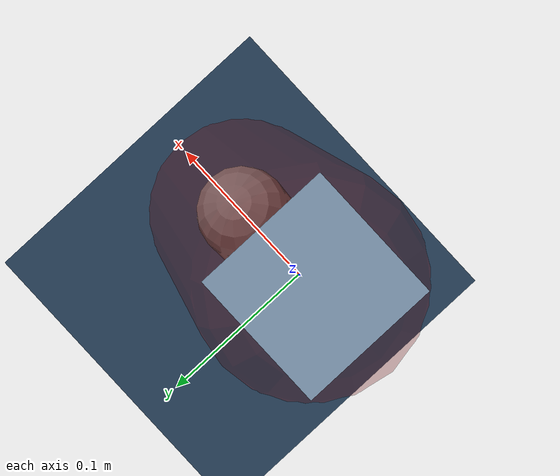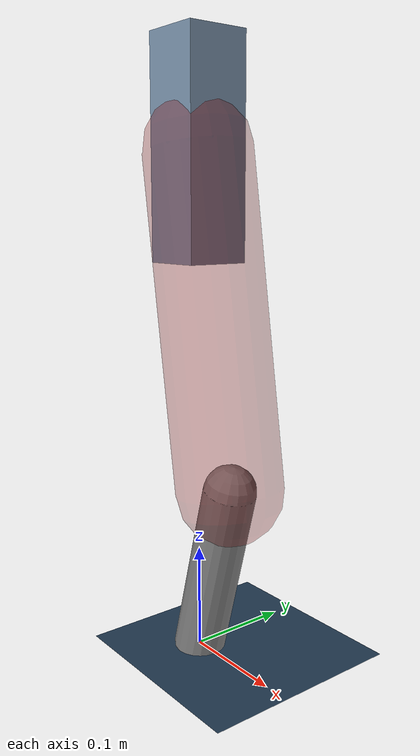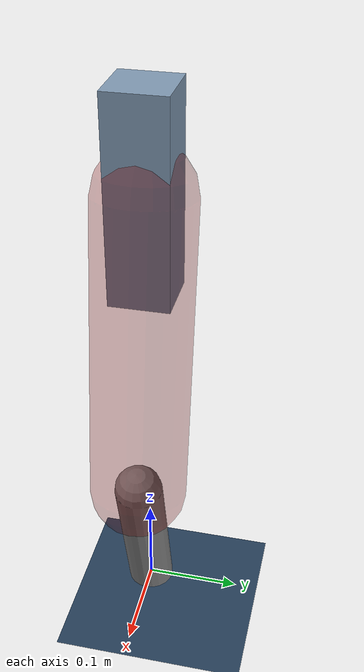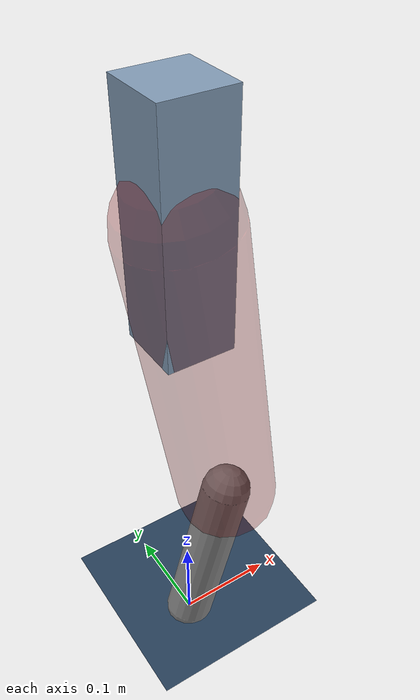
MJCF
<mujoco model="Hopper2D">
	<compiler inertiafromgeom="true" angle="radian" />
	<option timestep="0.001" integrator="implicit" cone="elliptic" solver="Newton" tolerance="1e-10" />

	<default>
		<geom contype="1" conaffinity="1" condim="3" friction="2 0.005 0.0001" solref="0.005 1" />
		<joint limited="true" damping="0.1" />
	</default>

	<asset>
		<texture name="skybox" type="skybox" builtin="gradient" rgb1=".4 .6 .8" rgb2="0 0 0" width="800" height="800" />
		<texture name="grid" type="2d" builtin="checker" rgb1=".1 .2 .3" rgb2=".2 .3 .4" width="300" height="300" mark="edge" markrgb=".2 .3 .4" />
		<material name="ground" texture="grid" texrepeat="1 1" texuniform="true" reflectance="0.1" />
		<material name="leg" rgba="0.5 0.6 0.7 1" />
	</asset>

	<worldbody>

		<geom name="floor" type="plane" size="5 5 0.25" material="ground" />

		<light directional="false" diffuse="0.8 0.8 0.8" specular="0.3 0.3 0.3" pos="0 0 2" dir="0 0 -1" />
		<light mode="targetbodycom" target="base" directional="false" diffuse="0.8 0.8 0.8" specular="0.3 0.3 0.3" pos="0 0 2" dir="0 0 -1" />

		<camera name="fixed" pos="0 -2 1" xyaxes="1 0 0 0 0 1" />
		<camera name="tracking" mode="trackcom" pos="0 -3 1" />

		<body name="root" pos="0 0 0.4766873952352698">
			<joint name="slide_x" type="slide" axis="1 0 0" range="-100 100" />
			<joint name="slide_z" type="slide" axis="0 0 1" range="0 10" />

			<body name="base" pos="0 0 0">
				<geom name="torso" type="box" size="0.03 0.03 0.1" mass="2.16" material="leg" />

				<body name="link1" pos="0 0 0" euler="0 1.417683664979688 0">
					<joint type="hinge" axis="0 -1 0" pos="0 0 0" name="hinge1" limited="true" range="-3.14 3.14" stiffness="0" damping="0.1" />
					<geom name="thigh" type="capsule" fromto="0 0 0 0.30923584537980764 0 0" size="0.05" rgba="0.5 0 0 0.3" mass="1.0138367825254808" />

					<body name="link2" pos="0.30923584537980764 0 0" euler="0 0.42212598688750036 0">
						<joint type="hinge" axis="0 -1 0" pos="0 0 0" name="hinge2" limited="true" range="-3.14 3.14" stiffness="0" damping="0.1" />
						<geom name="shank" type="capsule" fromto="0 0 0 0.1774515498554622 0 0" size="0.025" mass="0.381706394869916" />

					</body>
				</body>
			</body>
		</body>
	</worldbody>

	<actuator>
		<motor name="torque1" joint="hinge1" ctrlrange="-63.59394828585386 63.59394828585386" ctrllimited="true" gear="1" />
		<motor name="torque2" joint="hinge2" ctrlrange="-21.035316496798373 21.035316496798373" ctrllimited="true" gear="1" />
	</actuator>
</mujoco>
